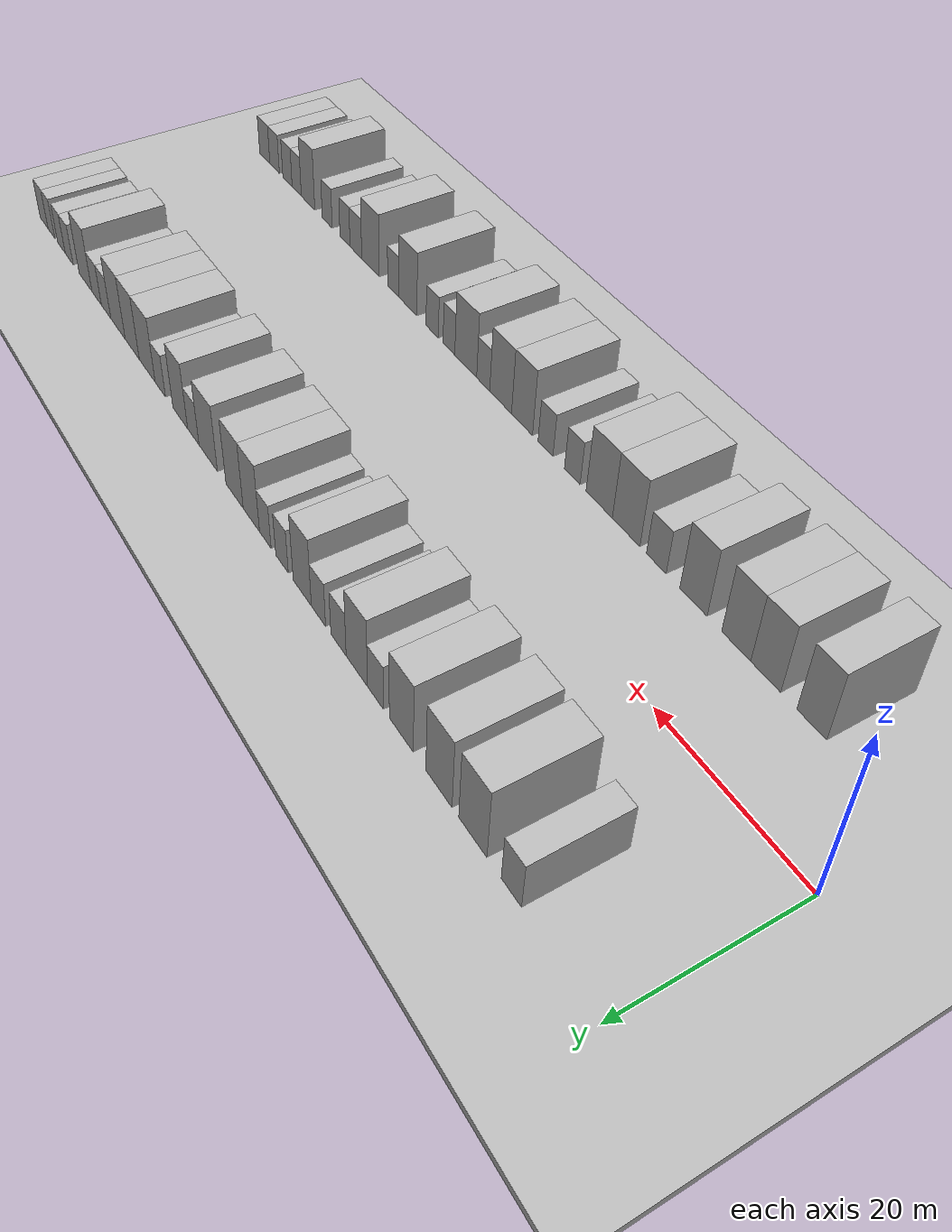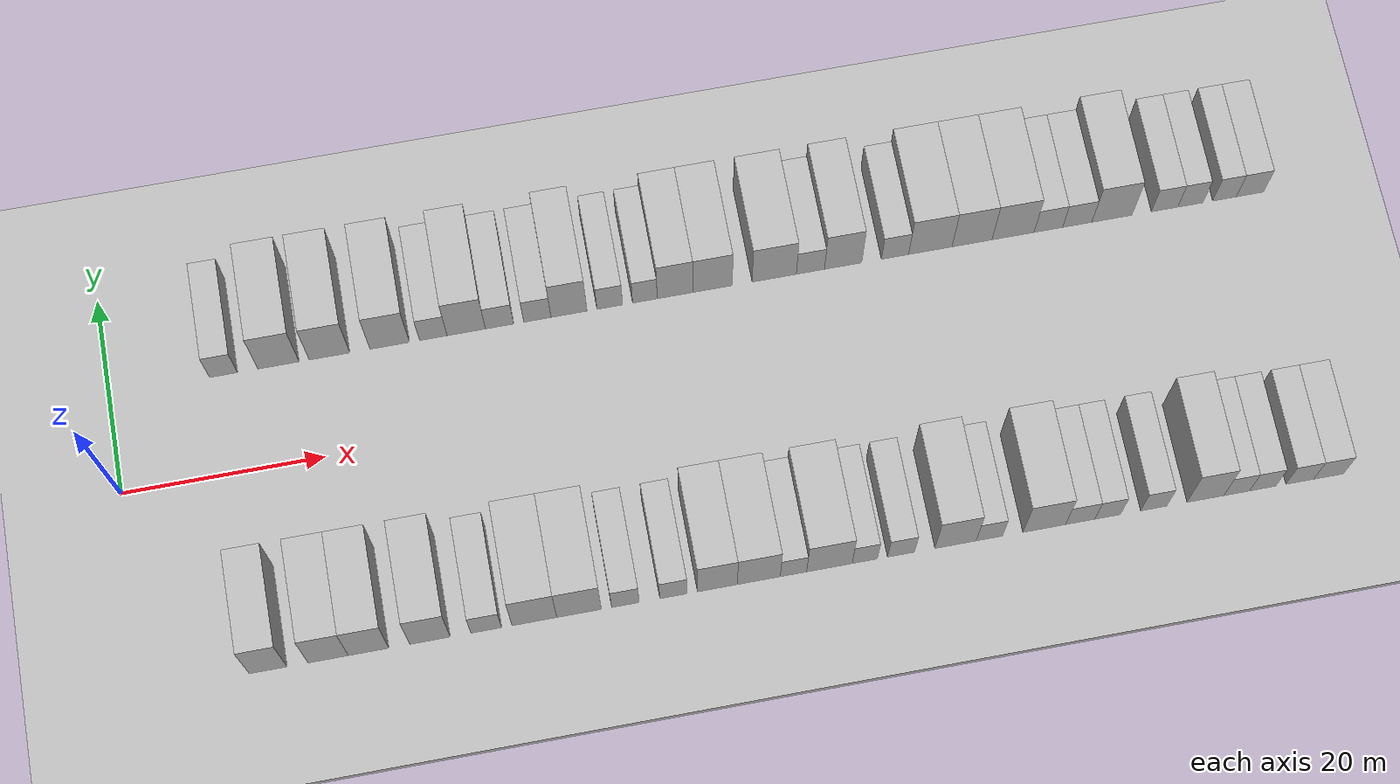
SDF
<sdf version="1.6">
 <world name="default">
  <include><name>ground_plane_1</name><uri>model://HANNAS_ground_plane</uri></include>
  <include>
   <name>ground_plane_2</name>
   <uri>model://HANNAS_ground_plane</uri>
   <pose>100 0 0  0 0 0</pose>
  </include>
  <model name="building_1">
   <static>1</static>
   <pose>11.3828 15.0000 0 0.000000 0.000000 1.570796</pose>
   <link name="link">
    <pose>0 0 3.00 0 0 0</pose>
    <collision name="collision"><geometry><box><size>10.0000 2.7655 6.0000</size></box></geometry></collision>
    <visual name="visual">
     <cast_shadows>0</cast_shadows>
     <geometry><box><size>10.0000 2.7655 6.0000</size></box></geometry>
     <material>
      <script>
       <uri>model://HANNAS_wall/materials/scripts</uri>
       <uri>model://HANNAS_wall/materials/textures</uri>
       <name>vrc/HANNAS_wall</name>
      </script>
     </material>
    </visual>
   </link>
  </model>
  <model name="building_2">
   <static>1</static>
   <pose>16.8109 15.0000 0 0.000000 0.000000 1.570796</pose>
   <link name="link">
    <pose>0 0 4.50 0 0 0</pose>
    <collision name="collision"><geometry><box><size>10.0000 4.0907 9.0000</size></box></geometry></collision>
    <visual name="visual">
     <cast_shadows>0</cast_shadows>
     <geometry><box><size>10.0000 4.0907 9.0000</size></box></geometry>
     <material>
      <script>
       <uri>model://HANNAS_wall/materials/scripts</uri>
       <uri>model://HANNAS_wall/materials/textures</uri>
       <name>vrc/HANNAS_wall</name>
      </script>
     </material>
    </visual>
   </link>
  </model>
  <model name="building_3">
   <static>1</static>
   <pose>21.8706 15.0000 0 0.000000 0.000000 1.570796</pose>
   <link name="link">
    <pose>0 0 4.50 0 0 0</pose>
    <collision name="collision"><geometry><box><size>10.0000 4.0287 9.0000</size></box></geometry></collision>
    <visual name="visual">
     <cast_shadows>0</cast_shadows>
     <geometry><box><size>10.0000 4.0287 9.0000</size></box></geometry>
     <material>
      <script>
       <uri>model://HANNAS_wall/materials/scripts</uri>
       <uri>model://HANNAS_wall/materials/textures</uri>
       <name>vrc/HANNAS_wall</name>
      </script>
     </material>
    </visual>
   </link>
  </model>
  <model name="building_4">
   <static>1</static>
   <pose>27.8541 15.0000 0 0.000000 0.000000 1.570796</pose>
   <link name="link">
    <pose>0 0 4.50 0 0 0</pose>
    <collision name="collision"><geometry><box><size>10.0000 3.9383 9.0000</size></box></geometry></collision>
    <visual name="visual">
     <cast_shadows>0</cast_shadows>
     <geometry><box><size>10.0000 3.9383 9.0000</size></box></geometry>
     <material>
      <script>
       <uri>model://HANNAS_wall/materials/scripts</uri>
       <uri>model://HANNAS_wall/materials/textures</uri>
       <name>vrc/HANNAS_wall</name>
      </script>
     </material>
    </visual>
   </link>
  </model>
  <model name="building_5">
   <static>1</static>
   <pose>32.1938 15.0000 0 0.000000 0.000000 1.570796</pose>
   <link name="link">
    <pose>0 0 3.00 0 0 0</pose>
    <collision name="collision"><geometry><box><size>10.0000 2.7412 6.0000</size></box></geometry></collision>
    <visual name="visual">
     <cast_shadows>0</cast_shadows>
     <geometry><box><size>10.0000 2.7412 6.0000</size></box></geometry>
     <material>
      <script>
       <uri>model://HANNAS_wall/materials/scripts</uri>
       <uri>model://HANNAS_wall/materials/textures</uri>
       <name>vrc/HANNAS_wall</name>
      </script>
     </material>
    </visual>
   </link>
  </model>
  <model name="building_6">
   <static>1</static>
   <pose>35.4792 15.0000 0 0.000000 0.000000 1.570796</pose>
   <link name="link">
    <pose>0 0 4.50 0 0 0</pose>
    <collision name="collision"><geometry><box><size>10.0000 3.8296 9.0000</size></box></geometry></collision>
    <visual name="visual">
     <cast_shadows>0</cast_shadows>
     <geometry><box><size>10.0000 3.8296 9.0000</size></box></geometry>
     <material>
      <script>
       <uri>model://HANNAS_wall/materials/scripts</uri>
       <uri>model://HANNAS_wall/materials/textures</uri>
       <name>vrc/HANNAS_wall</name>
      </script>
     </material>
    </visual>
   </link>
  </model>
  <model name="building_7">
   <static>1</static>
   <pose>38.8080 15.0000 0 0.000000 0.000000 1.570796</pose>
   <link name="link">
    <pose>0 0 3.00 0 0 0</pose>
    <collision name="collision"><geometry><box><size>10.0000 2.8279 6.0000</size></box></geometry></collision>
    <visual name="visual">
     <cast_shadows>0</cast_shadows>
     <geometry><box><size>10.0000 2.8279 6.0000</size></box></geometry>
     <material>
      <script>
       <uri>model://HANNAS_wall/materials/scripts</uri>
       <uri>model://HANNAS_wall/materials/textures</uri>
       <name>vrc/HANNAS_wall</name>
      </script>
     </material>
    </visual>
   </link>
  </model>
  <model name="building_8">
   <static>1</static>
   <pose>42.5889 15.0000 0 0.000000 0.000000 1.570796</pose>
   <link name="link">
    <pose>0 0 3.00 0 0 0</pose>
    <collision name="collision"><geometry><box><size>10.0000 2.7339 6.0000</size></box></geometry></collision>
    <visual name="visual">
     <cast_shadows>0</cast_shadows>
     <geometry><box><size>10.0000 2.7339 6.0000</size></box></geometry>
     <material>
      <script>
       <uri>model://HANNAS_wall/materials/scripts</uri>
       <uri>model://HANNAS_wall/materials/textures</uri>
       <name>vrc/HANNAS_wall</name>
      </script>
     </material>
    </visual>
   </link>
  </model>
  <model name="building_9">
   <static>1</static>
   <pose>45.7597 15.0000 0 0.000000 0.000000 1.570796</pose>
   <link name="link">
    <pose>0 0 4.50 0 0 0</pose>
    <collision name="collision"><geometry><box><size>10.0000 3.6075 9.0000</size></box></geometry></collision>
    <visual name="visual">
     <cast_shadows>0</cast_shadows>
     <geometry><box><size>10.0000 3.6075 9.0000</size></box></geometry>
     <material>
      <script>
       <uri>model://HANNAS_wall/materials/scripts</uri>
       <uri>model://HANNAS_wall/materials/textures</uri>
       <name>vrc/HANNAS_wall</name>
      </script>
     </material>
    </visual>
   </link>
  </model>
  <model name="building_10">
   <static>1</static>
   <pose>49.8547 15.0000 0 0.000000 0.000000 1.570796</pose>
   <link name="link">
    <pose>0 0 3.00 0 0 0</pose>
    <collision name="collision"><geometry><box><size>10.0000 2.5825 6.0000</size></box></geometry></collision>
    <visual name="visual">
     <cast_shadows>0</cast_shadows>
     <geometry><box><size>10.0000 2.5825 6.0000</size></box></geometry>
     <material>
      <script>
       <uri>model://HANNAS_wall/materials/scripts</uri>
       <uri>model://HANNAS_wall/materials/textures</uri>
       <name>vrc/HANNAS_wall</name>
      </script>
     </material>
    </visual>
   </link>
  </model>
  <model name="building_11">
   <static>1</static>
   <pose>53.3895 15.0000 0 0.000000 0.000000 1.570796</pose>
   <link name="link">
    <pose>0 0 3.00 0 0 0</pose>
    <collision name="collision"><geometry><box><size>10.0000 2.4872 6.0000</size></box></geometry></collision>
    <visual name="visual">
     <cast_shadows>0</cast_shadows>
     <geometry><box><size>10.0000 2.4872 6.0000</size></box></geometry>
     <material>
      <script>
       <uri>model://HANNAS_wall/materials/scripts</uri>
       <uri>model://HANNAS_wall/materials/textures</uri>
       <name>vrc/HANNAS_wall</name>
      </script>
     </material>
    </visual>
   </link>
  </model>
  <model name="building_12">
   <static>1</static>
   <pose>56.4404 15.0000 0 0.000000 0.000000 1.570796</pose>
   <link name="link">
    <pose>0 0 4.50 0 0 0</pose>
    <collision name="collision"><geometry><box><size>10.0000 3.6145 9.0000</size></box></geometry></collision>
    <visual name="visual">
     <cast_shadows>0</cast_shadows>
     <geometry><box><size>10.0000 3.6145 9.0000</size></box></geometry>
     <material>
      <script>
       <uri>model://HANNAS_wall/materials/scripts</uri>
       <uri>model://HANNAS_wall/materials/textures</uri>
       <name>vrc/HANNAS_wall</name>
      </script>
     </material>
    </visual>
   </link>
  </model>
  <model name="building_13">
   <static>1</static>
   <pose>60.2215 15.0000 0 0.000000 0.000000 1.570796</pose>
   <link name="link">
    <pose>0 0 4.50 0 0 0</pose>
    <collision name="collision"><geometry><box><size>10.0000 3.9477 9.0000</size></box></geometry></collision>
    <visual name="visual">
     <cast_shadows>0</cast_shadows>
     <geometry><box><size>10.0000 3.9477 9.0000</size></box></geometry>
     <material>
      <script>
       <uri>model://HANNAS_wall/materials/scripts</uri>
       <uri>model://HANNAS_wall/materials/textures</uri>
       <name>vrc/HANNAS_wall</name>
      </script>
     </material>
    </visual>
   </link>
  </model>
  <model name="building_14">
   <static>1</static>
   <pose>66.4321 15.0000 0 0.000000 0.000000 1.570796</pose>
   <link name="link">
    <pose>0 0 4.50 0 0 0</pose>
    <collision name="collision"><geometry><box><size>10.0000 4.4736 9.0000</size></box></geometry></collision>
    <visual name="visual">
     <cast_shadows>0</cast_shadows>
     <geometry><box><size>10.0000 4.4736 9.0000</size></box></geometry>
     <material>
      <script>
       <uri>model://HANNAS_wall/materials/scripts</uri>
       <uri>model://HANNAS_wall/materials/textures</uri>
       <name>vrc/HANNAS_wall</name>
      </script>
     </material>
    </visual>
   </link>
  </model>
  <model name="building_15">
   <static>1</static>
   <pose>70.0951 15.0000 0 0.000000 0.000000 1.570796</pose>
   <link name="link">
    <pose>0 0 3.00 0 0 0</pose>
    <collision name="collision"><geometry><box><size>10.0000 2.8523 6.0000</size></box></geometry></collision>
    <visual name="visual">
     <cast_shadows>0</cast_shadows>
     <geometry><box><size>10.0000 2.8523 6.0000</size></box></geometry>
     <material>
      <script>
       <uri>model://HANNAS_wall/materials/scripts</uri>
       <uri>model://HANNAS_wall/materials/textures</uri>
       <name>vrc/HANNAS_wall</name>
      </script>
     </material>
    </visual>
   </link>
  </model>
  <model name="building_16">
   <static>1</static>
   <pose>73.4118 15.0000 0 0.000000 0.000000 1.570796</pose>
   <link name="link">
    <pose>0 0 4.50 0 0 0</pose>
    <collision name="collision"><geometry><box><size>10.0000 3.7812 9.0000</size></box></geometry></collision>
    <visual name="visual">
     <cast_shadows>0</cast_shadows>
     <geometry><box><size>10.0000 3.7812 9.0000</size></box></geometry>
     <material>
      <script>
       <uri>model://HANNAS_wall/materials/scripts</uri>
       <uri>model://HANNAS_wall/materials/textures</uri>
       <name>vrc/HANNAS_wall</name>
      </script>
     </material>
    </visual>
   </link>
  </model>
  <model name="building_17">
   <static>1</static>
   <pose>78.6862 15.0000 0 0.000000 0.000000 1.570796</pose>
   <link name="link">
    <pose>0 0 3.00 0 0 0</pose>
    <collision name="collision"><geometry><box><size>10.0000 2.7675 6.0000</size></box></geometry></collision>
    <visual name="visual">
     <cast_shadows>0</cast_shadows>
     <geometry><box><size>10.0000 2.7675 6.0000</size></box></geometry>
     <material>
      <script>
       <uri>model://HANNAS_wall/materials/scripts</uri>
       <uri>model://HANNAS_wall/materials/textures</uri>
       <name>vrc/HANNAS_wall</name>
      </script>
     </material>
    </visual>
   </link>
  </model>
  <model name="building_18">
   <static>1</static>
   <pose>82.2870 15.0000 0 0.000000 0.000000 1.570796</pose>
   <link name="link">
    <pose>0 0 4.50 0 0 0</pose>
    <collision name="collision"><geometry><box><size>10.0000 4.4342 9.0000</size></box></geometry></collision>
    <visual name="visual">
     <cast_shadows>0</cast_shadows>
     <geometry><box><size>10.0000 4.4342 9.0000</size></box></geometry>
     <material>
      <script>
       <uri>model://HANNAS_wall/materials/scripts</uri>
       <uri>model://HANNAS_wall/materials/textures</uri>
       <name>vrc/HANNAS_wall</name>
      </script>
     </material>
    </visual>
   </link>
  </model>
  <model name="building_19">
   <static>1</static>
   <pose>86.5421 15.0000 0 0.000000 0.000000 1.570796</pose>
   <link name="link">
    <pose>0 0 4.50 0 0 0</pose>
    <collision name="collision"><geometry><box><size>10.0000 4.0760 9.0000</size></box></geometry></collision>
    <visual name="visual">
     <cast_shadows>0</cast_shadows>
     <geometry><box><size>10.0000 4.0760 9.0000</size></box></geometry>
     <material>
      <script>
       <uri>model://HANNAS_wall/materials/scripts</uri>
       <uri>model://HANNAS_wall/materials/textures</uri>
       <name>vrc/HANNAS_wall</name>
      </script>
     </material>
    </visual>
   </link>
  </model>
  <model name="building_20">
   <static>1</static>
   <pose>90.7308 15.0000 0 0.000000 0.000000 1.570796</pose>
   <link name="link">
    <pose>0 0 4.50 0 0 0</pose>
    <collision name="collision"><geometry><box><size>10.0000 4.3013 9.0000</size></box></geometry></collision>
    <visual name="visual">
     <cast_shadows>0</cast_shadows>
     <geometry><box><size>10.0000 4.3013 9.0000</size></box></geometry>
     <material>
      <script>
       <uri>model://HANNAS_wall/materials/scripts</uri>
       <uri>model://HANNAS_wall/materials/textures</uri>
       <name>vrc/HANNAS_wall</name>
      </script>
     </material>
    </visual>
   </link>
  </model>
  <model name="building_21">
   <static>1</static>
   <pose>94.3463 15.0000 0 0.000000 0.000000 1.570796</pose>
   <link name="link">
    <pose>0 0 3.00 0 0 0</pose>
    <collision name="collision"><geometry><box><size>10.0000 2.9298 6.0000</size></box></geometry></collision>
    <visual name="visual">
     <cast_shadows>0</cast_shadows>
     <geometry><box><size>10.0000 2.9298 6.0000</size></box></geometry>
     <material>
      <script>
       <uri>model://HANNAS_wall/materials/scripts</uri>
       <uri>model://HANNAS_wall/materials/textures</uri>
       <name>vrc/HANNAS_wall</name>
      </script>
     </material>
    </visual>
   </link>
  </model>
  <model name="building_22">
   <static>1</static>
   <pose>97.3043 15.0000 0 0.000000 0.000000 1.570796</pose>
   <link name="link">
    <pose>0 0 3.00 0 0 0</pose>
    <collision name="collision"><geometry><box><size>10.0000 2.9861 6.0000</size></box></geometry></collision>
    <visual name="visual">
     <cast_shadows>0</cast_shadows>
     <geometry><box><size>10.0000 2.9861 6.0000</size></box></geometry>
     <material>
      <script>
       <uri>model://HANNAS_wall/materials/scripts</uri>
       <uri>model://HANNAS_wall/materials/textures</uri>
       <name>vrc/HANNAS_wall</name>
      </script>
     </material>
    </visual>
   </link>
  </model>
  <model name="building_23">
   <static>1</static>
   <pose>100.8639 15.0000 0 0.000000 0.000000 1.570796</pose>
   <link name="link">
    <pose>0 0 4.50 0 0 0</pose>
    <collision name="collision"><geometry><box><size>10.0000 4.1332 9.0000</size></box></geometry></collision>
    <visual name="visual">
     <cast_shadows>0</cast_shadows>
     <geometry><box><size>10.0000 4.1332 9.0000</size></box></geometry>
     <material>
      <script>
       <uri>model://HANNAS_wall/materials/scripts</uri>
       <uri>model://HANNAS_wall/materials/textures</uri>
       <name>vrc/HANNAS_wall</name>
      </script>
     </material>
    </visual>
   </link>
  </model>
  <model name="building_24">
   <static>1</static>
   <pose>106.2925 15.0000 0 0.000000 0.000000 1.570796</pose>
   <link name="link">
    <pose>0 0 3.00 0 0 0</pose>
    <collision name="collision"><geometry><box><size>10.0000 2.7241 6.0000</size></box></geometry></collision>
    <visual name="visual">
     <cast_shadows>0</cast_shadows>
     <geometry><box><size>10.0000 2.7241 6.0000</size></box></geometry>
     <material>
      <script>
       <uri>model://HANNAS_wall/materials/scripts</uri>
       <uri>model://HANNAS_wall/materials/textures</uri>
       <name>vrc/HANNAS_wall</name>
      </script>
     </material>
    </visual>
   </link>
  </model>
  <model name="building_25">
   <static>1</static>
   <pose>108.9550 15.0000 0 0.000000 0.000000 1.570796</pose>
   <link name="link">
    <pose>0 0 3.00 0 0 0</pose>
    <collision name="collision"><geometry><box><size>10.0000 2.6010 6.0000</size></box></geometry></collision>
    <visual name="visual">
     <cast_shadows>0</cast_shadows>
     <geometry><box><size>10.0000 2.6010 6.0000</size></box></geometry>
     <material>
      <script>
       <uri>model://HANNAS_wall/materials/scripts</uri>
       <uri>model://HANNAS_wall/materials/textures</uri>
       <name>vrc/HANNAS_wall</name>
      </script>
     </material>
    </visual>
   </link>
  </model>
  <model name="building_26">
   <static>1</static>
   <pose>112.4720 15.0000 0 0.000000 0.000000 1.570796</pose>
   <link name="link">
    <pose>0 0 3.00 0 0 0</pose>
    <collision name="collision"><geometry><box><size>10.0000 2.4330 6.0000</size></box></geometry></collision>
    <visual name="visual">
     <cast_shadows>0</cast_shadows>
     <geometry><box><size>10.0000 2.4330 6.0000</size></box></geometry>
     <material>
      <script>
       <uri>model://HANNAS_wall/materials/scripts</uri>
       <uri>model://HANNAS_wall/materials/textures</uri>
       <name>vrc/HANNAS_wall</name>
      </script>
     </material>
    </visual>
   </link>
  </model>
  <model name="building_27">
   <static>1</static>
   <pose>115.1053 15.0000 0 0.000000 0.000000 1.570796</pose>
   <link name="link">
    <pose>0 0 3.00 0 0 0</pose>
    <collision name="collision"><geometry><box><size>10.0000 2.8334 6.0000</size></box></geometry></collision>
    <visual name="visual">
     <cast_shadows>0</cast_shadows>
     <geometry><box><size>10.0000 2.8334 6.0000</size></box></geometry>
     <material>
      <script>
       <uri>model://HANNAS_wall/materials/scripts</uri>
       <uri>model://HANNAS_wall/materials/textures</uri>
       <name>vrc/HANNAS_wall</name>
      </script>
     </material>
    </visual>
   </link>
  </model>
  <model name="building_56">
   <static>1</static>
   <pose>11.8006 -15.0000 0 0.000000 0.000000 1.570796</pose>
   <link name="link">
    <pose>0 0 4.50 0 0 0</pose>
    <collision name="collision"><geometry><box><size>10.0000 3.6011 9.0000</size></box></geometry></collision>
    <visual name="visual">
     <cast_shadows>0</cast_shadows>
     <geometry><box><size>10.0000 3.6011 9.0000</size></box></geometry>
     <material>
      <script>
       <uri>model://HANNAS_wall/materials/scripts</uri>
       <uri>model://HANNAS_wall/materials/textures</uri>
       <name>vrc/HANNAS_wall</name>
      </script>
     </material>
    </visual>
   </link>
  </model>
  <model name="building_57">
   <static>1</static>
   <pose>17.5274 -15.0000 0 0.000000 0.000000 1.570796</pose>
   <link name="link">
    <pose>0 0 4.50 0 0 0</pose>
    <collision name="collision"><geometry><box><size>10.0000 3.8525 9.0000</size></box></geometry></collision>
    <visual name="visual">
     <cast_shadows>0</cast_shadows>
     <geometry><box><size>10.0000 3.8525 9.0000</size></box></geometry>
     <material>
      <script>
       <uri>model://HANNAS_wall/materials/scripts</uri>
       <uri>model://HANNAS_wall/materials/textures</uri>
       <name>vrc/HANNAS_wall</name>
      </script>
     </material>
    </visual>
   </link>
  </model>
  <model name="building_58">
   <static>1</static>
   <pose>21.3933 -15.0000 0 0.000000 0.000000 1.570796</pose>
   <link name="link">
    <pose>0 0 4.50 0 0 0</pose>
    <collision name="collision"><geometry><box><size>10.0000 3.8794 9.0000</size></box></geometry></collision>
    <visual name="visual">
     <cast_shadows>0</cast_shadows>
     <geometry><box><size>10.0000 3.8794 9.0000</size></box></geometry>
     <material>
      <script>
       <uri>model://HANNAS_wall/materials/scripts</uri>
       <uri>model://HANNAS_wall/materials/textures</uri>
       <name>vrc/HANNAS_wall</name>
      </script>
     </material>
    </visual>
   </link>
  </model>
  <model name="building_59">
   <static>1</static>
   <pose>27.2735 -15.0000 0 0.000000 0.000000 1.570796</pose>
   <link name="link">
    <pose>0 0 4.50 0 0 0</pose>
    <collision name="collision"><geometry><box><size>10.0000 3.8810 9.0000</size></box></geometry></collision>
    <visual name="visual">
     <cast_shadows>0</cast_shadows>
     <geometry><box><size>10.0000 3.8810 9.0000</size></box></geometry>
     <material>
      <script>
       <uri>model://HANNAS_wall/materials/scripts</uri>
       <uri>model://HANNAS_wall/materials/textures</uri>
       <name>vrc/HANNAS_wall</name>
      </script>
     </material>
    </visual>
   </link>
  </model>
  <model name="building_60">
   <static>1</static>
   <pose>32.6913 -15.0000 0 0.000000 0.000000 1.570796</pose>
   <link name="link">
    <pose>0 0 3.00 0 0 0</pose>
    <collision name="collision"><geometry><box><size>10.0000 2.9547 6.0000</size></box></geometry></collision>
    <visual name="visual">
     <cast_shadows>0</cast_shadows>
     <geometry><box><size>10.0000 2.9547 6.0000</size></box></geometry>
     <material>
      <script>
       <uri>model://HANNAS_wall/materials/scripts</uri>
       <uri>model://HANNAS_wall/materials/textures</uri>
       <name>vrc/HANNAS_wall</name>
      </script>
     </material>
    </visual>
   </link>
  </model>
  <model name="building_61">
   <static>1</static>
   <pose>37.3259 -15.0000 0 0.000000 0.000000 1.570796</pose>
   <link name="link">
    <pose>0 0 4.50 0 0 0</pose>
    <collision name="collision"><geometry><box><size>10.0000 4.3144 9.0000</size></box></geometry></collision>
    <visual name="visual">
     <cast_shadows>0</cast_shadows>
     <geometry><box><size>10.0000 4.3144 9.0000</size></box></geometry>
     <material>
      <script>
       <uri>model://HANNAS_wall/materials/scripts</uri>
       <uri>model://HANNAS_wall/materials/textures</uri>
       <name>vrc/HANNAS_wall</name>
      </script>
     </material>
    </visual>
   </link>
  </model>
  <model name="building_62">
   <static>1</static>
   <pose>41.6329 -15.0000 0 0.000000 0.000000 1.570796</pose>
   <link name="link">
    <pose>0 0 4.50 0 0 0</pose>
    <collision name="collision"><geometry><box><size>10.0000 4.2997 9.0000</size></box></geometry></collision>
    <visual name="visual">
     <cast_shadows>0</cast_shadows>
     <geometry><box><size>10.0000 4.2997 9.0000</size></box></geometry>
     <material>
      <script>
       <uri>model://HANNAS_wall/materials/scripts</uri>
       <uri>model://HANNAS_wall/materials/textures</uri>
       <name>vrc/HANNAS_wall</name>
      </script>
     </material>
    </visual>
   </link>
  </model>
  <model name="building_63">
   <static>1</static>
   <pose>46.1156 -15.0000 0 0.000000 0.000000 1.570796</pose>
   <link name="link">
    <pose>0 0 3.00 0 0 0</pose>
    <collision name="collision"><geometry><box><size>10.0000 2.6656 6.0000</size></box></geometry></collision>
    <visual name="visual">
     <cast_shadows>0</cast_shadows>
     <geometry><box><size>10.0000 2.6656 6.0000</size></box></geometry>
     <material>
      <script>
       <uri>model://HANNAS_wall/materials/scripts</uri>
       <uri>model://HANNAS_wall/materials/textures</uri>
       <name>vrc/HANNAS_wall</name>
      </script>
     </material>
    </visual>
   </link>
  </model>
  <model name="building_64">
   <static>1</static>
   <pose>50.7757 -15.0000 0 0.000000 0.000000 1.570796</pose>
   <link name="link">
    <pose>0 0 3.00 0 0 0</pose>
    <collision name="collision"><geometry><box><size>10.0000 2.6547 6.0000</size></box></geometry></collision>
    <visual name="visual">
     <cast_shadows>0</cast_shadows>
     <geometry><box><size>10.0000 2.6547 6.0000</size></box></geometry>
     <material>
      <script>
       <uri>model://HANNAS_wall/materials/scripts</uri>
       <uri>model://HANNAS_wall/materials/textures</uri>
       <name>vrc/HANNAS_wall</name>
      </script>
     </material>
    </visual>
   </link>
  </model>
  <model name="building_65">
   <static>1</static>
   <pose>55.0444 -15.0000 0 0.000000 0.000000 1.570796</pose>
   <link name="link">
    <pose>0 0 4.50 0 0 0</pose>
    <collision name="collision"><geometry><box><size>10.0000 3.8827 9.0000</size></box></geometry></collision>
    <visual name="visual">
     <cast_shadows>0</cast_shadows>
     <geometry><box><size>10.0000 3.8827 9.0000</size></box></geometry>
     <material>
      <script>
       <uri>model://HANNAS_wall/materials/scripts</uri>
       <uri>model://HANNAS_wall/materials/textures</uri>
       <name>vrc/HANNAS_wall</name>
      </script>
     </material>
    </visual>
   </link>
  </model>
  <model name="building_66">
   <static>1</static>
   <pose>59.0746 -15.0000 0 0.000000 0.000000 1.570796</pose>
   <link name="link">
    <pose>0 0 4.50 0 0 0</pose>
    <collision name="collision"><geometry><box><size>10.0000 4.1778 9.0000</size></box></geometry></collision>
    <visual name="visual">
     <cast_shadows>0</cast_shadows>
     <geometry><box><size>10.0000 4.1778 9.0000</size></box></geometry>
     <material>
      <script>
       <uri>model://HANNAS_wall/materials/scripts</uri>
       <uri>model://HANNAS_wall/materials/textures</uri>
       <name>vrc/HANNAS_wall</name>
      </script>
     </material>
    </visual>
   </link>
  </model>
  <model name="building_67">
   <static>1</static>
   <pose>62.4487 -15.0000 0 0.000000 0.000000 1.570796</pose>
   <link name="link">
    <pose>0 0 3.00 0 0 0</pose>
    <collision name="collision"><geometry><box><size>10.0000 2.5702 6.0000</size></box></geometry></collision>
    <visual name="visual">
     <cast_shadows>0</cast_shadows>
     <geometry><box><size>10.0000 2.5702 6.0000</size></box></geometry>
     <material>
      <script>
       <uri>model://HANNAS_wall/materials/scripts</uri>
       <uri>model://HANNAS_wall/materials/textures</uri>
       <name>vrc/HANNAS_wall</name>
      </script>
     </material>
    </visual>
   </link>
  </model>
  <model name="building_68">
   <static>1</static>
   <pose>65.9555 -15.0000 0 0.000000 0.000000 1.570796</pose>
   <link name="link">
    <pose>0 0 4.50 0 0 0</pose>
    <collision name="collision"><geometry><box><size>10.0000 4.4434 9.0000</size></box></geometry></collision>
    <visual name="visual">
     <cast_shadows>0</cast_shadows>
     <geometry><box><size>10.0000 4.4434 9.0000</size></box></geometry>
     <material>
      <script>
       <uri>model://HANNAS_wall/materials/scripts</uri>
       <uri>model://HANNAS_wall/materials/textures</uri>
       <name>vrc/HANNAS_wall</name>
      </script>
     </material>
    </visual>
   </link>
  </model>
  <model name="building_69">
   <static>1</static>
   <pose>69.4085 -15.0000 0 0.000000 0.000000 1.570796</pose>
   <link name="link">
    <pose>0 0 3.00 0 0 0</pose>
    <collision name="collision"><geometry><box><size>10.0000 2.4626 6.0000</size></box></geometry></collision>
    <visual name="visual">
     <cast_shadows>0</cast_shadows>
     <geometry><box><size>10.0000 2.4626 6.0000</size></box></geometry>
     <material>
      <script>
       <uri>model://HANNAS_wall/materials/scripts</uri>
       <uri>model://HANNAS_wall/materials/textures</uri>
       <name>vrc/HANNAS_wall</name>
      </script>
     </material>
    </visual>
   </link>
  </model>
  <model name="building_70">
   <static>1</static>
   <pose>72.9666 -15.0000 0 0.000000 0.000000 1.570796</pose>
   <link name="link">
    <pose>0 0 3.00 0 0 0</pose>
    <collision name="collision"><geometry><box><size>10.0000 2.6536 6.0000</size></box></geometry></collision>
    <visual name="visual">
     <cast_shadows>0</cast_shadows>
     <geometry><box><size>10.0000 2.6536 6.0000</size></box></geometry>
     <material>
      <script>
       <uri>model://HANNAS_wall/materials/scripts</uri>
       <uri>model://HANNAS_wall/materials/textures</uri>
       <name>vrc/HANNAS_wall</name>
      </script>
     </material>
    </visual>
   </link>
  </model>
  <model name="building_71">
   <static>1</static>
   <pose>78.3152 -15.0000 0 0.000000 0.000000 1.570796</pose>
   <link name="link">
    <pose>0 0 4.50 0 0 0</pose>
    <collision name="collision"><geometry><box><size>10.0000 4.0437 9.0000</size></box></geometry></collision>
    <visual name="visual">
     <cast_shadows>0</cast_shadows>
     <geometry><box><size>10.0000 4.0437 9.0000</size></box></geometry>
     <material>
      <script>
       <uri>model://HANNAS_wall/materials/scripts</uri>
       <uri>model://HANNAS_wall/materials/textures</uri>
       <name>vrc/HANNAS_wall</name>
      </script>
     </material>
    </visual>
   </link>
  </model>
  <model name="building_72">
   <static>1</static>
   <pose>81.6415 -15.0000 0 0.000000 0.000000 1.570796</pose>
   <link name="link">
    <pose>0 0 3.00 0 0 0</pose>
    <collision name="collision"><geometry><box><size>10.0000 2.6089 6.0000</size></box></geometry></collision>
    <visual name="visual">
     <cast_shadows>0</cast_shadows>
     <geometry><box><size>10.0000 2.6089 6.0000</size></box></geometry>
     <material>
      <script>
       <uri>model://HANNAS_wall/materials/scripts</uri>
       <uri>model://HANNAS_wall/materials/textures</uri>
       <name>vrc/HANNAS_wall</name>
      </script>
     </material>
    </visual>
   </link>
  </model>
  <model name="building_73">
   <static>1</static>
   <pose>87.0492 -15.0000 0 0.000000 0.000000 1.570796</pose>
   <link name="link">
    <pose>0 0 4.50 0 0 0</pose>
    <collision name="collision"><geometry><box><size>10.0000 4.2065 9.0000</size></box></geometry></collision>
    <visual name="visual">
     <cast_shadows>0</cast_shadows>
     <geometry><box><size>10.0000 4.2065 9.0000</size></box></geometry>
     <material>
      <script>
       <uri>model://HANNAS_wall/materials/scripts</uri>
       <uri>model://HANNAS_wall/materials/textures</uri>
       <name>vrc/HANNAS_wall</name>
      </script>
     </material>
    </visual>
   </link>
  </model>
  <model name="building_74">
   <static>1</static>
   <pose>90.6027 -15.0000 0 0.000000 0.000000 1.570796</pose>
   <link name="link">
    <pose>0 0 3.00 0 0 0</pose>
    <collision name="collision"><geometry><box><size>10.0000 2.9004 6.0000</size></box></geometry></collision>
    <visual name="visual">
     <cast_shadows>0</cast_shadows>
     <geometry><box><size>10.0000 2.9004 6.0000</size></box></geometry>
     <material>
      <script>
       <uri>model://HANNAS_wall/materials/scripts</uri>
       <uri>model://HANNAS_wall/materials/textures</uri>
       <name>vrc/HANNAS_wall</name>
      </script>
     </material>
    </visual>
   </link>
  </model>
  <model name="building_75">
   <static>1</static>
   <pose>93.3220 -15.0000 0 0.000000 0.000000 1.570796</pose>
   <link name="link">
    <pose>0 0 3.00 0 0 0</pose>
    <collision name="collision"><geometry><box><size>10.0000 2.5383 6.0000</size></box></geometry></collision>
    <visual name="visual">
     <cast_shadows>0</cast_shadows>
     <geometry><box><size>10.0000 2.5383 6.0000</size></box></geometry>
     <material>
      <script>
       <uri>model://HANNAS_wall/materials/scripts</uri>
       <uri>model://HANNAS_wall/materials/textures</uri>
       <name>vrc/HANNAS_wall</name>
      </script>
     </material>
    </visual>
   </link>
  </model>
  <model name="building_76">
   <static>1</static>
   <pose>97.8906 -15.0000 0 0.000000 0.000000 1.570796</pose>
   <link name="link">
    <pose>0 0 3.00 0 0 0</pose>
    <collision name="collision"><geometry><box><size>10.0000 2.5989 6.0000</size></box></geometry></collision>
    <visual name="visual">
     <cast_shadows>0</cast_shadows>
     <geometry><box><size>10.0000 2.5989 6.0000</size></box></geometry>
     <material>
      <script>
       <uri>model://HANNAS_wall/materials/scripts</uri>
       <uri>model://HANNAS_wall/materials/textures</uri>
       <name>vrc/HANNAS_wall</name>
      </script>
     </material>
    </visual>
   </link>
  </model>
  <model name="building_77">
   <static>1</static>
   <pose>103.0183 -15.0000 0 0.000000 0.000000 1.570796</pose>
   <link name="link">
    <pose>0 0 4.50 0 0 0</pose>
    <collision name="collision"><geometry><box><size>10.0000 3.6564 9.0000</size></box></geometry></collision>
    <visual name="visual">
     <cast_shadows>0</cast_shadows>
     <geometry><box><size>10.0000 3.6564 9.0000</size></box></geometry>
     <material>
      <script>
       <uri>model://HANNAS_wall/materials/scripts</uri>
       <uri>model://HANNAS_wall/materials/textures</uri>
       <name>vrc/HANNAS_wall</name>
      </script>
     </material>
    </visual>
   </link>
  </model>
  <model name="building_78">
   <static>1</static>
   <pose>106.1299 -15.0000 0 0.000000 0.000000 1.570796</pose>
   <link name="link">
    <pose>0 0 3.00 0 0 0</pose>
    <collision name="collision"><geometry><box><size>10.0000 2.5667 6.0000</size></box></geometry></collision>
    <visual name="visual">
     <cast_shadows>0</cast_shadows>
     <geometry><box><size>10.0000 2.5667 6.0000</size></box></geometry>
     <material>
      <script>
       <uri>model://HANNAS_wall/materials/scripts</uri>
       <uri>model://HANNAS_wall/materials/textures</uri>
       <name>vrc/HANNAS_wall</name>
      </script>
     </material>
    </visual>
   </link>
  </model>
  <model name="building_79">
   <static>1</static>
   <pose>108.7253 -15.0000 0 0.000000 0.000000 1.570796</pose>
   <link name="link">
    <pose>0 0 3.00 0 0 0</pose>
    <collision name="collision"><geometry><box><size>10.0000 2.6242 6.0000</size></box></geometry></collision>
    <visual name="visual">
     <cast_shadows>0</cast_shadows>
     <geometry><box><size>10.0000 2.6242 6.0000</size></box></geometry>
     <material>
      <script>
       <uri>model://HANNAS_wall/materials/scripts</uri>
       <uri>model://HANNAS_wall/materials/textures</uri>
       <name>vrc/HANNAS_wall</name>
      </script>
     </material>
    </visual>
   </link>
  </model>
  <model name="building_80">
   <static>1</static>
   <pose>112.4185 -15.0000 0 0.000000 0.000000 1.570796</pose>
   <link name="link">
    <pose>0 0 3.00 0 0 0</pose>
    <collision name="collision"><geometry><box><size>10.0000 2.7622 6.0000</size></box></geometry></collision>
    <visual name="visual">
     <cast_shadows>0</cast_shadows>
     <geometry><box><size>10.0000 2.7622 6.0000</size></box></geometry>
     <material>
      <script>
       <uri>model://HANNAS_wall/materials/scripts</uri>
       <uri>model://HANNAS_wall/materials/textures</uri>
       <name>vrc/HANNAS_wall</name>
      </script>
     </material>
    </visual>
   </link>
  </model>
  <model name="building_81">
   <static>1</static>
   <pose>115.2951 -15.0000 0 0.000000 0.000000 1.570796</pose>
   <link name="link">
    <pose>0 0 3.00 0 0 0</pose>
    <collision name="collision"><geometry><box><size>10.0000 2.9910 6.0000</size></box></geometry></collision>
    <visual name="visual">
     <cast_shadows>0</cast_shadows>
     <geometry><box><size>10.0000 2.9910 6.0000</size></box></geometry>
     <material>
      <script>
       <uri>model://HANNAS_wall/materials/scripts</uri>
       <uri>model://HANNAS_wall/materials/textures</uri>
       <name>vrc/HANNAS_wall</name>
      </script>
     </material>
    </visual>
   </link>
  </model>
 </world>
</sdf>
